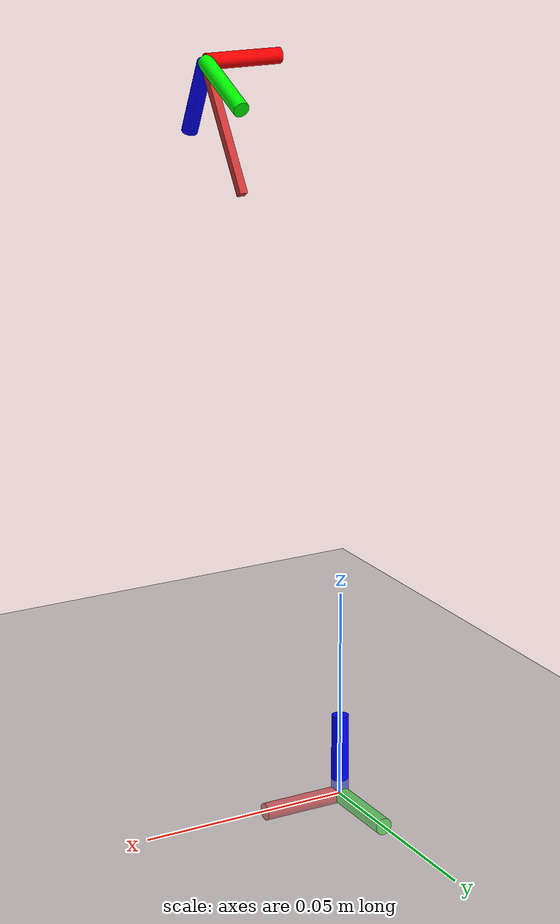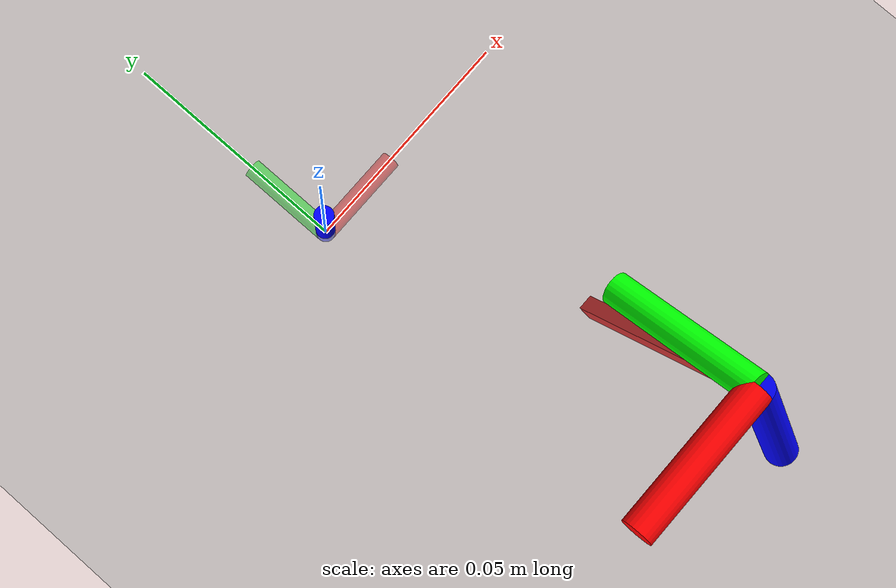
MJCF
<mujoco model="spatial_parallelogram_dual_finger_silicone_v2">
  <compiler angle="degree" coordinate="local" eulerseq="xyz" inertiafromgeom="true"/>

  <!-- 物理参数保持不变 -->
  <option timestep="0.0005" gravity="0 0 -9.81" iterations="200" tolerance="1e-12"
          noslip_iterations="100" integrator="RK4" cone="elliptic">
    <flag contact="enable"/>
  </option>

  <visual>
    <headlight diffuse="0.4 0.4 0.4" ambient="0.2 0.2 0.2" specular="0.1 0.1 0.1"/>
    <rgba haze="0.15 0.25 0.35 1"/>
    <global azimuth="120" elevation="-20"/>
  </visual>

  <default>
    <geom type="box" rgba="0.7 0.7 0.7 0.6" contype="0" conaffinity="0"/>
    <joint damping="0.1" armature="0.003" frictionloss="0.02" actuatorfrcrange="-10.0 10.0"/>
  </default>

  <asset>
    <texture type="skybox" builtin="gradient" rgb1="0.3 0.5 0.7" rgb2="0 0 0" width="512" height="3072"/>
    <texture type="2d" name="groundplane" builtin="checker" rgb1="0.2 0.3 0.4" rgb2="0.1 0.2 0.3" width="100" height="100"/>
    <material name="groundplane" texture="groundplane" texrepeat="10 10"/>
  </asset>

  <worldbody>
    <camera name="closeup" pos="0.3 -0.3 0.3" xyaxes="0.7 0.7 0 -0.4 0.4 0.8" mode="trackcom"/>

    <!-- 地板 -->
    <geom name="floor" type="box" size="1.0 1.0 0.004" pos="0 0 0" material="groundplane"
          contype="1" conaffinity="1"
          solref="0.001 1" solimp="0.99 0.999 0.001" friction="0.2 0.005 0.0001"/>

    <light pos="0 0 3" dir="0 0 -1" directional="true" castshadow="false" diffuse="0.8 0.8 0.8" specular="0.3 0.3 0.3"/>

    <!-- 世界坐标系显示 -->
    <body name="v1iz_base_frame_right" pos="0 0 0" euler="0 0 0">
        <geom type="cylinder" size="0.002 0.01" pos="0.01 0 0" euler="0 90 0"  rgba="1 0 0 1" contype="0" conaffinity="0"/>
        <geom type="cylinder" size="0.002 0.01" pos="0 0.01 0" euler="-90 0 0" rgba="0 1 0 1" contype="0" conaffinity="0"/>
        <geom type="cylinder" size="0.002 0.01" pos="0 0 0.01" euler="0 0 0"   rgba="0 0 1 1" contype="0" conaffinity="0"/>
    </body>

    <!-- Hand Base -->
    <body name="hand_base" pos="0 0 0.16297187" euler="0 180 0">
        <!-- Right Finger Base -->
        <body name="figer_right" pos="0 -0.065 0">

            <!-- 局部坐标系显示 -->
            <body name="viz_base_frame_right" pos="0 0 0" euler="26 0 0">
                <geom type="cylinder" size="0.002 0.01" pos="0.01 0 0" euler="0 90 0"  rgba="1 0 0 1" contype="0" conaffinity="0"/>
                <geom type="cylinder" size="0.002 0.01" pos="0 0.01 0" euler="-90 0 0" rgba="0 1 0 1" contype="0" conaffinity="0"/>
                <geom type="cylinder" size="0.002 0.01" pos="0 0 0.01" euler="0 0 0"   rgba="0 0 1 1" contype="0" conaffinity="0"/>
            </body>

            <!-- ★★★ Link OA Chain Right ★★★ -->
            <body name="Link_OA_Chain_right" pos="0 0 0" euler="147.6 0 0">
                <joint name="OA_active_x_right"  type="hinge" axis="1 0 0" range="-57.6 62.4"/>
                <joint name="OA_passive_z_right" type="hinge" axis="0 0 1" range="-60 60"/>
                <joint name="OA_active_y_right"  type="hinge" axis="0 1 0" range="-16 16"/>

                <!-- 已将 contype/conaffinity 设为 1，确保这是一个有物理碰撞的实体 -->
                <geom name="geom_OA_right" fromto="0 0 0  0 0 -0.034" size="0.001"
                      rgba="0.8 0.2 0.2 1" mass="0.015"
                      contype="1" conaffinity="1"/>
            </body>

        </body> <!-- Close figer_right -->
    </body> <!-- Close hand_base -->

  </worldbody>

  <actuator>
    <position name="act_OA_x_right" joint="OA_active_x_right" kp="481.4" kv="2.04" forcerange="-1.0 1.0" ctrlrange="-1.0053 1.089"/>
    <position name="act_OA_y_right" joint="OA_active_y_right" kp="481.4" kv="2.04" forcerange="-1.0 1.0" ctrlrange="-0.28 0.28"/>
  </actuator>

</mujoco>
